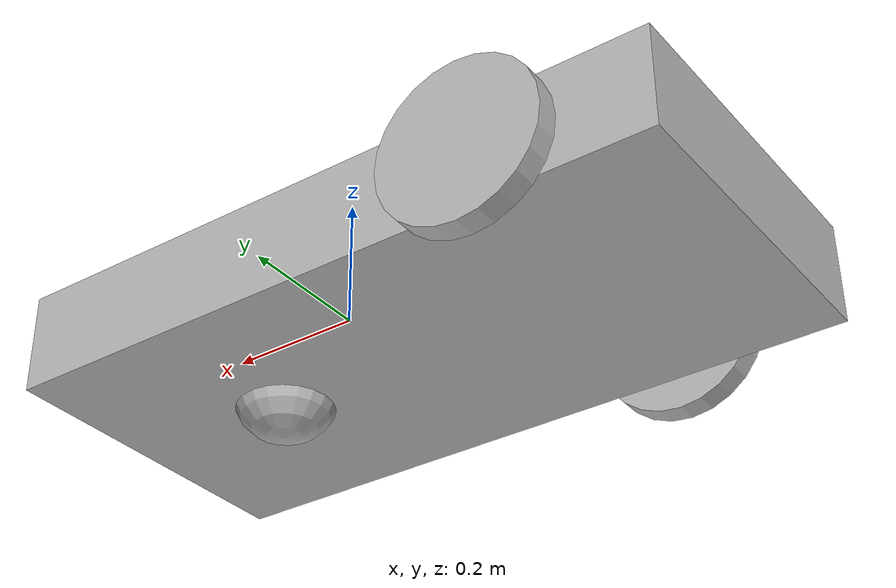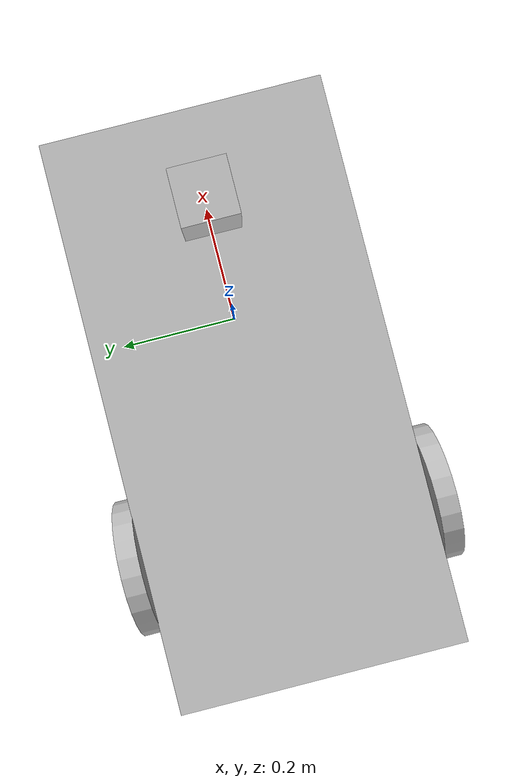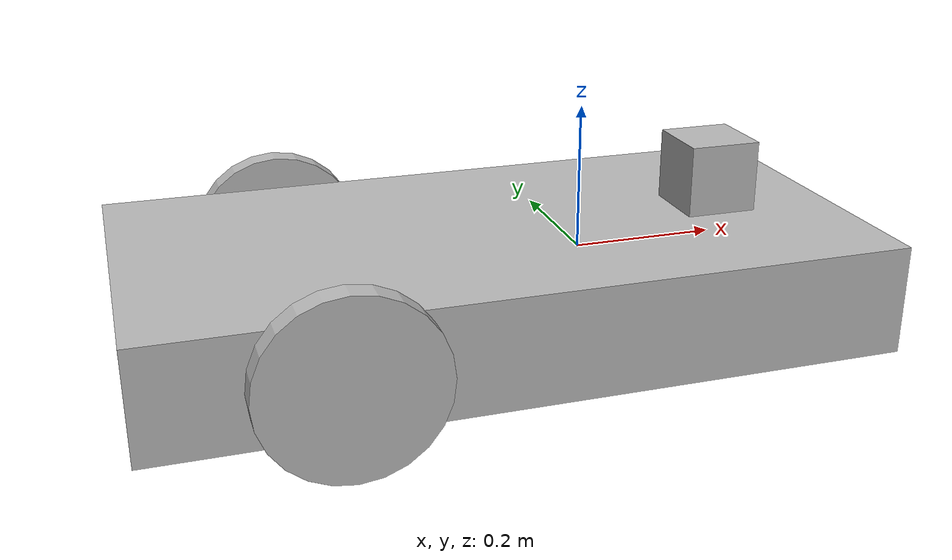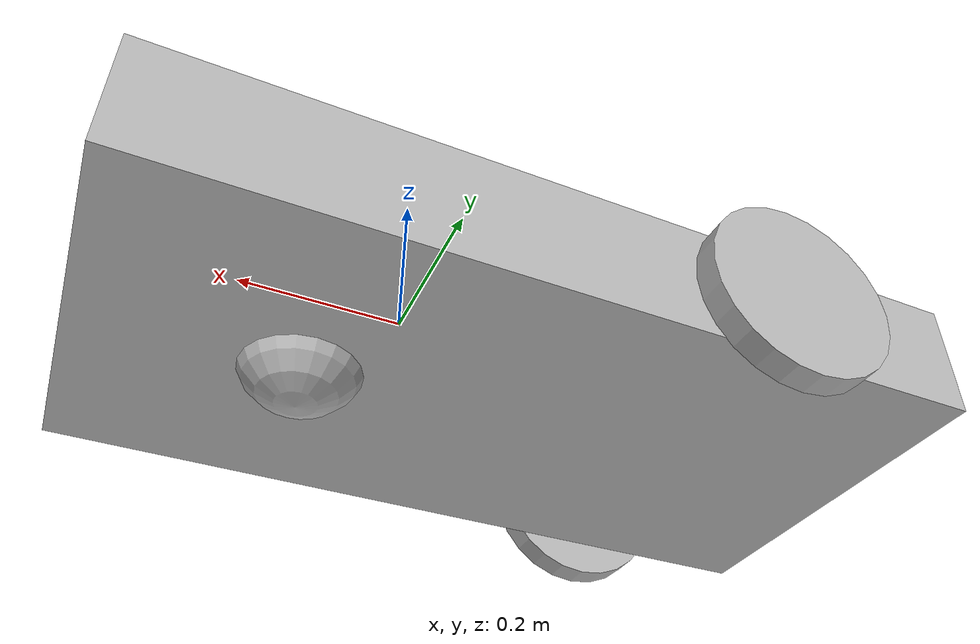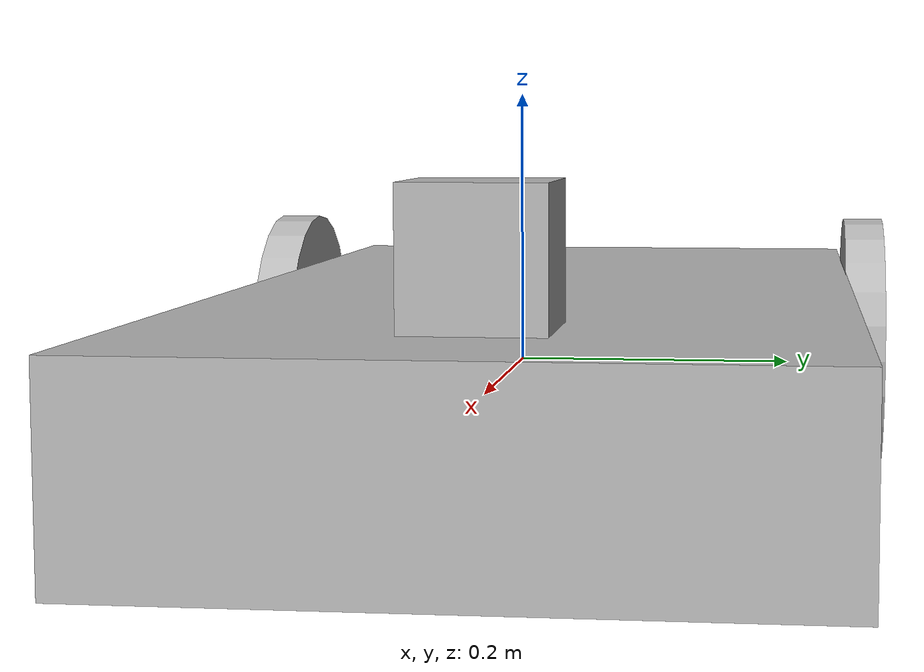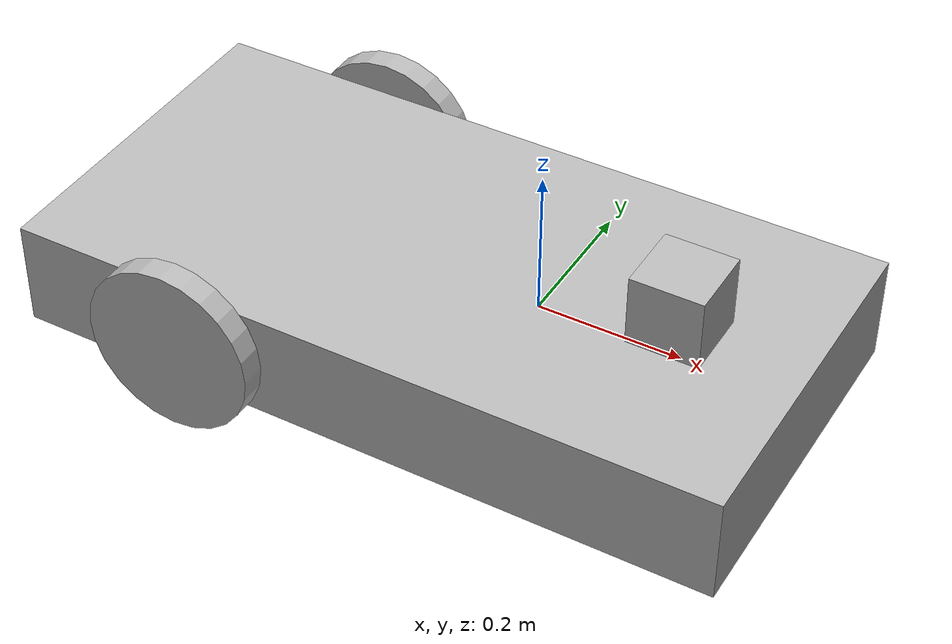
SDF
<?xml version='1.0'?>
<sdf version='1.7'>
  <model name='car'>
    <model name='car'>
      <link name='link_0'>
        <inertial>
          <mass>0.121386</mass>
          <inertia>
            <ixx>0.00292212</ixx>
            <iyy>0.0107847</iyy>
            <izz>0.0123684</izz>
            <ixy>0</ixy>
            <ixz>0</ixz>
            <iyz>0</iyz>
          </inertia>
        </inertial>
        <pose>0.06373 0.001272 0.010392 0 -0 0</pose>
        <visual name='visual'>
          <geometry>
            <box>
              <size>1 0.5 0.15</size>
            </box>
          </geometry>
        </visual>
        <collision name='collision'>
          <geometry>
            <box>
              <size>1 0.5 0.15</size>
            </box>
          </geometry>
        </collision>
      </link>
      <link name='link_1'>
        <inertial>
          <mass>1</mass>
          <inertia>
            <ixx>0.145833</ixx>
            <iyy>0.145833</iyy>
            <izz>0.125</izz>
            <ixy>0</ixy>
            <ixz>0</ixz>
            <iyz>0</iyz>
          </inertia>
        </inertial>
        <pose>-0.185439 -0.266829 0.010392 0 -0 0</pose>
        <visual name='visual'>
          <pose>0 0 0 1.57 -0 0</pose>
          <geometry>
            <cylinder>
              <radius>0.12</radius>
              <length>0.035</length>
            </cylinder>
          </geometry>
        </visual>
        <collision name='collision'>
          <pose>0 0 0 1.57 -0 0</pose>
          <geometry>
            <cylinder>
              <radius>0.12</radius>
              <length>0.035</length>
            </cylinder>
          </geometry>
        </collision>
      </link>
      <link name='link_1_clone_0'>
        <inertial>
          <mass>1</mass>
          <inertia>
            <ixx>0.145833</ixx>
            <iyy>0.145833</iyy>
            <izz>0.125</izz>
            <ixy>0</ixy>
            <ixz>0</ixz>
            <iyz>0</iyz>
          </inertia>
        </inertial>
        <pose>-0.185439 0.268171 0.010392 0 -0 0</pose>
        <visual name='visual'>
          <pose>0 0 0 1.57 -0 0</pose>
          <geometry>
            <cylinder>
              <radius>0.12</radius>
              <length>0.035</length>
            </cylinder>
          </geometry>
        </visual>
        <collision name='collision'>
          <pose>0 0 0 1.57 -0 0</pose>
          <geometry>
            <cylinder>
              <radius>0.12</radius>
              <length>0.035</length>
            </cylinder>
          </geometry>
        </collision>
      </link>
      <link name='link_2'>
        <inertial>
          <mass>0.00215059</mass>
          <inertia>
            <ixx>3.58e-06</ixx>
            <iyy>3.58e-06</iyy>
            <izz>3.58e-06</izz>
            <ixy>0</ixy>
            <ixz>0</ixz>
            <iyz>0</iyz>
          </inertia>
        </inertial>
        <pose>0.307147 -0.002614 -0.031178 0 -0 0</pose>
        <visual name='visual'>
          <geometry>
            <sphere>
              <radius>0.08</radius>
            </sphere>
          </geometry>
        </visual>
        <collision name='collision'>
          <geometry>
            <sphere>
              <radius>0.08</radius>
            </sphere>
          </geometry>
        </collision>
      </link>
      <joint name='right_wheel_joint' type='revolute'>
        <parent>link_0</parent>
        <child>link_1</child>
        <pose>0 0 0 0 -0 0</pose>
        <axis>
          <xyz>1 0 0</xyz>
          <limit>
            <lower>-1.79769e+308</lower>
            <upper>1.79769e+308</upper>
          </limit>
        </axis>
      </joint>
      <joint name='left_wheel_joint' type='revolute'>
        <parent>link_0</parent>
        <child>link_1_clone_0</child>
        <pose>0 0 0 0 -0 0</pose>
        <axis>
          <xyz>1 0 0</xyz>
          <limit>
            <lower>-1.79769e+308</lower>
            <upper>1.79769e+308</upper>
          </limit>
        </axis>
      </joint>
      <pose>-0.195382 0.001523 -0.042167 0 -0 0</pose>
    </model>
    <model name='depth_camera'>
      <link name='link'>
        <pose>0 0 0.05 0 -0 0</pose>
        <inertial>
          <mass>0.1</mass>
          <inertia>
            <ixx>0.000166667</ixx>
            <iyy>0.000166667</iyy>
            <izz>0.000166667</izz>
            <ixy>0</ixy>
            <ixz>0</ixz>
            <iyz>0</iyz>
          </inertia>
        </inertial>
        <collision name='collision'>
          <geometry>
            <box>
              <size>0.1 0.1 0.1</size>
            </box>
          </geometry>
        </collision>
        <visual name='visual'>
          <geometry>
            <box>
              <size>0.1 0.1 0.1</size>
            </box>
          </geometry>
        </visual>
        <sensor name='camera' type='depth'>
          <camera>
            <horizontal_fov>1.047</horizontal_fov>
            <image>
              <width>320</width>
              <height>240</height>
            </image>
            <clip>
              <near>0.1</near>
              <far>100</far>
            </clip>
          </camera>
          <always_on>1</always_on>
          <update_rate>30</update_rate>
          <visualize>1</visualize>
        </sensor>
      </link>
      <pose>0.195381 -0.001523 0.042167 0 -0 0</pose>
    </model>
    <joint name='depth_cam_joint' type='fixed'>
      <parent>car::link_0</parent>
      <child>depth_camera::link</child>
      <pose>0 0 0 0 -0 0</pose>
      <physics>
        <ode>
          <limit>
            <cfm>0</cfm>
            <erp>0.2</erp>
          </limit>
          <suspension>
            <cfm>0</cfm>
            <erp>0.2</erp>
          </suspension>
        </ode>
      </physics>
    </joint>
    <static>0</static>
    <allow_auto_disable>1</allow_auto_disable>
    <plugin name='follower' filename='libFollowerPlugin.so'/>
  </model>
</sdf>
